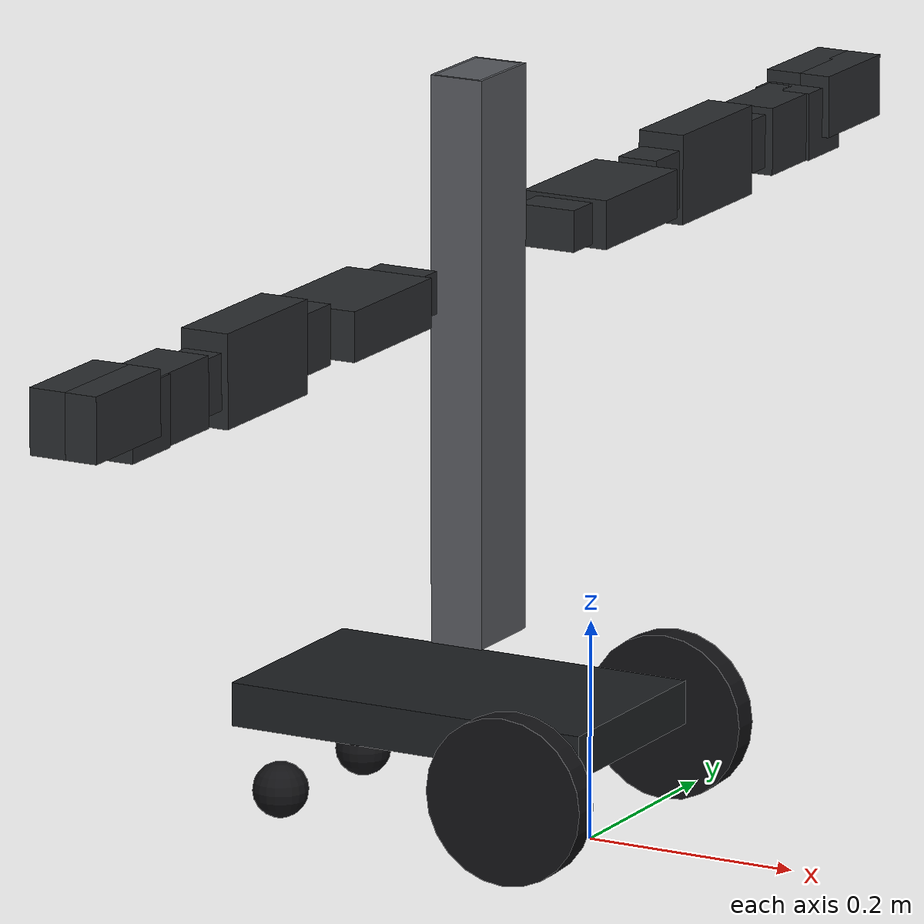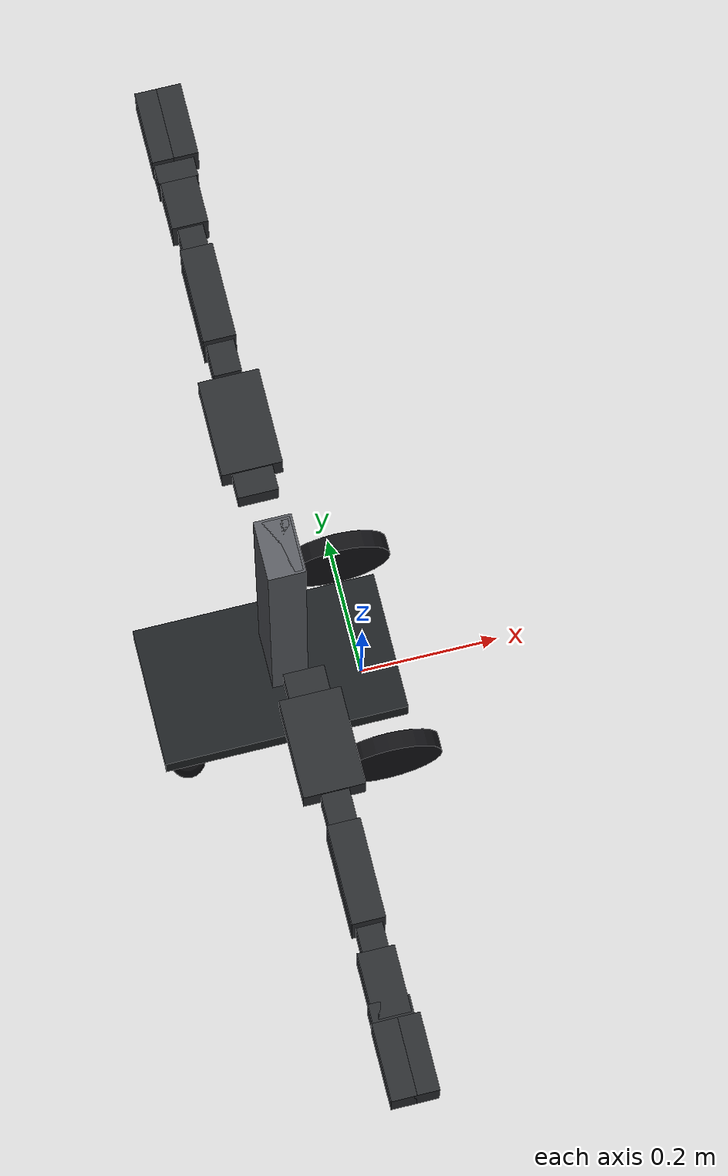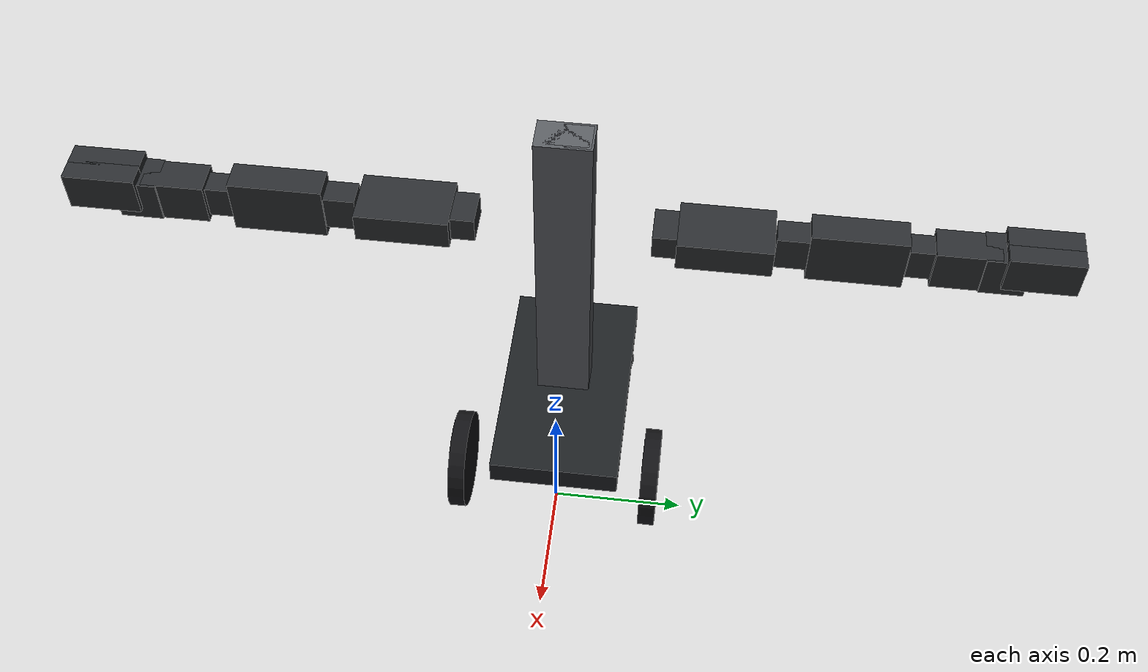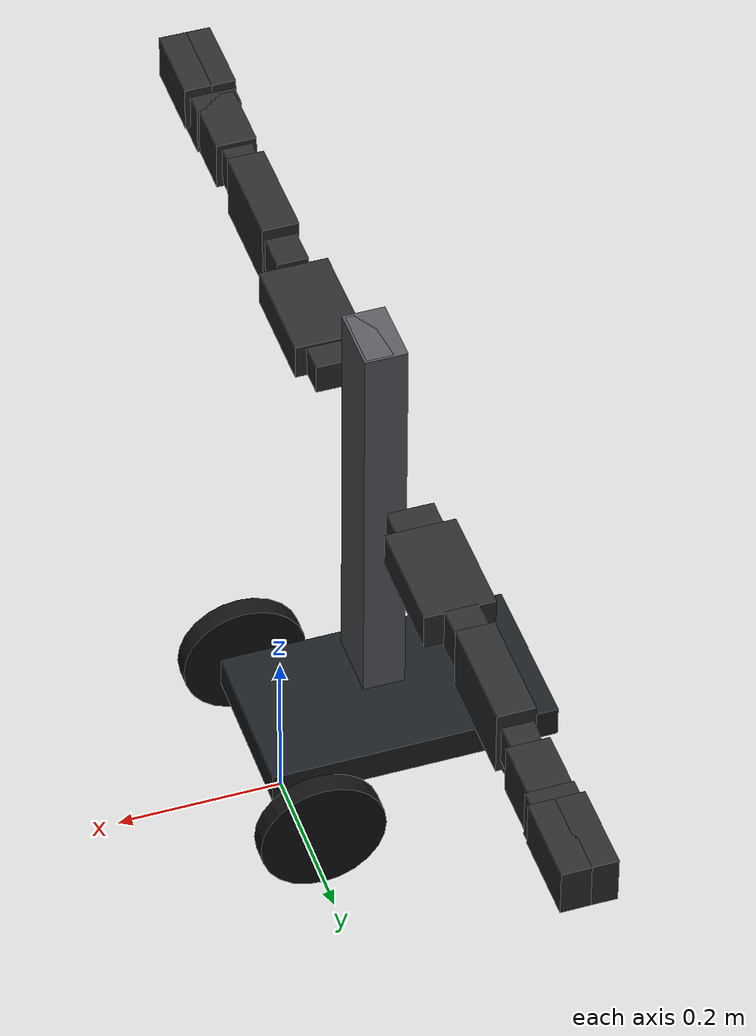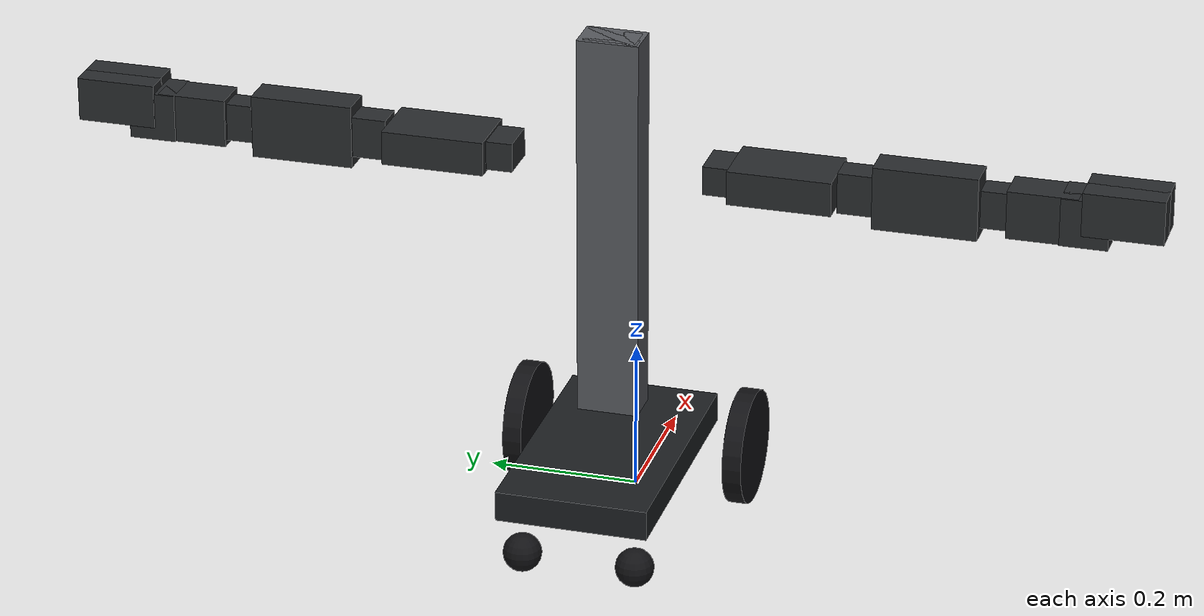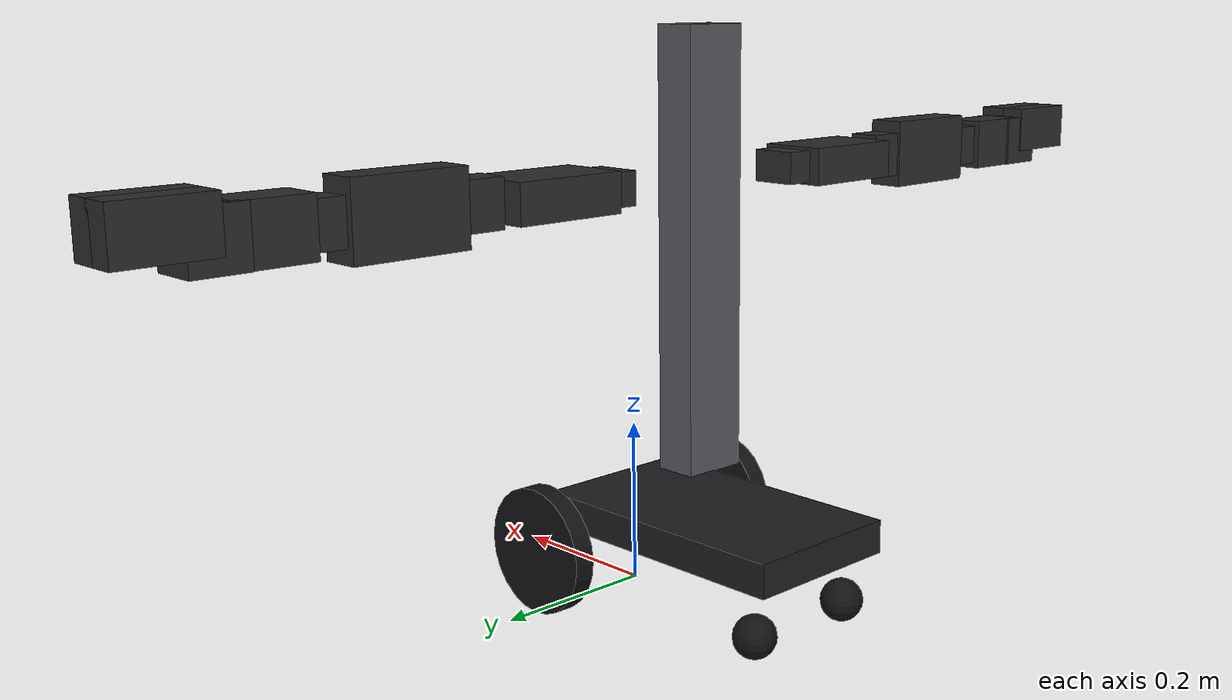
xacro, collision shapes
<?xml version="1.0"?>
<robot name="nori_leader" xmlns:xacro="http://www.ros.org/wiki/xacro">
  <xacro:arg name="left_bus_port"
    default="/dev/serial/by-id/usb-1a86_USB_Single_Serial_5B3D044472-if00"/>
  <xacro:arg name="right_bus_port"
    default="/dev/serial/by-id/usb-1a86_USB_Single_Serial_5B14029254-if00"/>
  <xacro:arg name="left_calibration_file"
    default="~/.config/nori/leader_left_arm_calibration.yaml"/>
  <xacro:arg name="right_calibration_file"
    default="~/.config/nori/leader_right_arm_calibration.yaml"/>
  <xacro:arg name="left_expected_model_number"
    default="UNVERIFIED_LEFT_MODEL"/>
  <xacro:arg name="right_expected_model_number"
    default="UNVERIFIED_RIGHT_MODEL"/>

  <xacro:include filename="properties.xacro"/>
  <xacro:include filename="base.xacro"/>
  <xacro:include filename="arm.xacro"/>
  <xacro:include filename="../ros2_control/nori_feetech.ros2_control.xacro"/>

  <!-- Reuse the established physical joint names and kinematic tree. -->
  <xacro:nori_base/>
  <xacro:nori_arm side="left" side_sign="-1.0"/>
  <xacro:nori_arm side="right" side_sign="1.0"/>

  <xacro:nori_feetech_leader_dual_arm_ros2_control
    left_bus_port="$(arg left_bus_port)"
    right_bus_port="$(arg right_bus_port)"
    left_calibration_file="$(arg left_calibration_file)"
    right_calibration_file="$(arg right_calibration_file)"
    left_expected_model_number="$(arg left_expected_model_number)"
    right_expected_model_number="$(arg right_expected_model_number)"
    baud_rate="1000000"/>
</robot>

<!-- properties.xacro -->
<robot xmlns:xacro="http://www.ros.org/wiki/xacro">

  <!-- Masses come from config/inertial_parameters.yaml. Edit that file, not this
       one, when hardware is weighed. -->
  <xacro:include filename="inertial.xacro"/>

  <xacro:property name="nori_pi" value="3.141592653589793"/>

  <!-- Supplied chassis dimensions in SI units. -->
  <xacro:property name="base_length" value="0.350"/>
  <xacro:property name="base_width" value="0.200"/>
  <xacro:property name="base_height" value="0.040"/>
  <!-- Drive-wheel axle center is 41.72459 mm behind the chassis front edge. -->
  <xacro:property name="axle_to_base_front" value="0.04172459"/>
  <!-- The drive-wheel axle is 9.62764 mm below the chassis bottom. -->
  <xacro:property name="wheel_center_below_base" value="0.00962764"/>
  <xacro:property name="base_geometry_x" value="${axle_to_base_front - base_length / 2.0}"/>
  <xacro:property name="base_geometry_z" value="${wheel_center_below_base + base_height / 2.0}"/>

  <xacro:property name="lift_lower_height" value="0.515"/>
  <xacro:property name="lift_upper_height" value="1.235"/>
  <xacro:property name="lift_travel" value="${lift_upper_height - lift_lower_height}"/>
  <xacro:property name="lift_top_margin" value="0.02"/>
  <xacro:property name="lift_command_travel" value="${lift_travel - lift_top_margin}"/>
  <xacro:property name="lift_stage_height" value="${lift_lower_height}"/>

  <xacro:property name="lift_middle_travel_ratio" value="0.5"/>
  <xacro:property name="lift_bottom_depth" value="0.03875250"/>
  <xacro:property name="lift_bottom_width" value="0.06890250"/>
  <xacro:property name="lift_middle_depth" value="0.04475250"/>
  <xacro:property name="lift_middle_width" value="0.07490250"/>
  <xacro:property name="lift_top_depth" value="0.05075250"/>
  <xacro:property name="lift_top_width" value="0.08090250"/>
  <xacro:property name="lift_front_edge_setback" value="0.13587150"/>
  <xacro:property name="lift_base_clearance" value="0.0456"/>
  <xacro:property name="lift_x"
    value="${axle_to_base_front - lift_front_edge_setback - lift_bottom_depth / 2.0}"/>
  <xacro:property name="lift_y" value="0.0"/>
  <xacro:property name="lift_retracted_center_z"
    value="${wheel_center_below_base + base_height + lift_base_clearance + lift_stage_height / 2.0}"/>
  <xacro:property name="lift_effort_limit" value="1.0"/>
  <xacro:property name="lift_velocity_limit" value="0.15"/>

  <xacro:property name="arm_mount_separation" value="0.250"/>
  <xacro:property name="arm_mount_below_lift_top_face" value="0.014"/>
  <xacro:property name="shoulder_pitch_down_adjustment" value="0.15651734"/>
  <xacro:property name="arm_mount_behind_lift_top_front" value="0.02537848"/>
  <xacro:property name="arm_mount_x_from_lift_top"
    value="${lift_top_depth / 2.0 - arm_mount_behind_lift_top_front}"/>
  <xacro:property name="arm_mount_y_from_lift_top"
    value="${arm_mount_separation / 2.0}"/>
  <xacro:property name="arm_mount_z_from_lift_top"
    value="${lift_stage_height / 2.0
             - arm_mount_below_lift_top_face
             - shoulder_pitch_down_adjustment}"/>

  <!-- Measured front-camera frame relative to the moving lift-top envelope. -->
  <xacro:property name="front_camera_below_lift_top_edge" value="0.17765747"/>
  <xacro:property name="front_camera_forward_of_lift_top_front" value="0.05166080"/>
  <xacro:property name="front_camera_x_from_lift_top"
    value="${lift_top_depth / 2.0 + front_camera_forward_of_lift_top_front}"/>
  <xacro:property name="front_camera_z_from_lift_top"
    value="${lift_stage_height / 2.0 - front_camera_below_lift_top_edge}"/>

  <!-- Measured overhead-camera frame relative to the moving lift-top envelope. -->
  <xacro:property name="overhead_camera_above_lift_top_face" value="0.05299205"/>
  <xacro:property name="overhead_camera_forward_of_lift_top_front" value="0.06426471"/>
  <xacro:property name="overhead_camera_x_from_lift_top"
    value="${lift_top_depth / 2.0 + overhead_camera_forward_of_lift_top_front}"/>
  <xacro:property name="overhead_camera_z_from_lift_top"
    value="${lift_stage_height / 2.0 + overhead_camera_above_lift_top_face}"/>

  <!-- Wheel diameter, width, and center-to-center separation supplied for NORI. -->
  <xacro:property name="wheel_radius" value="0.0762"/>
  <xacro:property name="wheel_width" value="0.0254"/>
  <xacro:property name="wheel_separation" value="0.30"/>

  <xacro:property name="base_shell_mesh_scale" value="0.001"/>
  <xacro:property name="base_shell_yaw" value="${nori_pi}"/>
  <xacro:property name="base_shell_offset_x" value="0.691944"/>
  <xacro:property name="base_shell_offset_y" value="0.216671"/>
  <xacro:property name="base_shell_offset_z" value="0.667639"/>

  <!-- Two rear casters, 315 mm behind the front edge and 150 mm apart laterally.
       TODO: Measure the caster swivel geometry. -->
  <xacro:property name="caster_radius" value="0.0254"/>
  <xacro:property name="caster_separation" value="0.150"/>
  <xacro:property name="caster_front_offset" value="0.315"/>
  <xacro:property name="caster_x" value="${axle_to_base_front - caster_front_offset}"/>

  <xacro:property name="lidar_mesh_scale" value="0.001"/>
  <xacro:property name="lidar_mesh_max_x" value="0.0278"/>
  <xacro:property name="lidar_mesh_min_z" value="0.0"/>
  <xacro:property name="lidar_mesh_max_z" value="0.0413"/>
  <xacro:property name="lidar_front_edge_setback" value="0.0097"/>
  <xacro:property name="lidar_x"
    value="${axle_to_base_front - lidar_front_edge_setback - lidar_mesh_max_x}"/>
  <xacro:property name="lidar_y" value="0.0"/>
  <!-- Raise the scan frame inside the fixed C1 model to match its scan plane. -->
  <xacro:property name="lidar_scan_offset_z" value="0.030"/>
  <xacro:property name="lidar_base_clearance" value="0.050"/>
  <xacro:property name="lidar_model_z" value="${wheel_center_below_base + base_height + lidar_base_clearance - lidar_mesh_min_z}"/>
  <xacro:property name="lidar_z" value="${lidar_model_z + lidar_scan_offset_z}"/>

  <!-- Simple LiDAR collision/inertia envelope derived from the C1 body. -->
  <xacro:property name="lidar_radius" value="${lidar_mesh_max_x}"/>
  <xacro:property name="lidar_height" value="${lidar_mesh_max_z - lidar_mesh_min_z}"/>
  <xacro:property name="lidar_collision_z" value="${(lidar_mesh_min_z + lidar_mesh_max_z) / 2.0}"/>

  <!--
    Supplied IMU envelope and edge placement. Depth is along robot X, width is
    along robot Y. The right-edge inset is measured inward from the chassis'
    right edge.
  -->
  <xacro:property name="imu_depth" value="0.00525"/>
  <xacro:property name="imu_width" value="0.00385"/>
  <xacro:property name="imu_height" value="0.0012"/>
  <xacro:property name="imu_front_edge_setback" value="0.020666"/>
  <xacro:property name="imu_right_edge_inset" value="0.01716726"/>
  <xacro:property name="imu_base_clearance" value="0.0076"/>
  <xacro:property name="imu_x"
    value="${axle_to_base_front - imu_front_edge_setback - imu_depth / 2.0}"/>
  <xacro:property name="imu_y"
    value="${-base_width / 2.0 + imu_right_edge_inset + imu_width / 2.0}"/>
  <xacro:property name="imu_z"
    value="${wheel_center_below_base + base_height + imu_base_clearance + imu_height / 2.0}"/>

  <xacro:property name="arm_thickness" value="0.050"/>
  <!-- Arm STLs are millimetres; see arm.xacro for frame conventions. -->
  <xacro:property name="arm_mesh_scale" value="0.001"/>
  <xacro:property name="shoulder_pitch_depth" value="0.05560"/>
  <xacro:property name="shoulder_pitch_width" value="0.04700"/>
  <xacro:property name="shoulder_pitch_height" value="0.03826"/>
  <xacro:property name="shoulder_pitch_body_y_from_inside_face"
    value="${shoulder_pitch_width / 2.0}"/>
  <xacro:property name="shoulder_pitch_mesh_y_offset" value="0.00"/>
  <xacro:property name="shoulder_roll_depth" value="0.08360"/>
  <xacro:property name="shoulder_roll_width" value="0.04500"/>
  <xacro:property name="shoulder_roll_height" value="0.1350"/>
  <xacro:property name="shoulder_roll_axis_from_top" value="0.02200"/>
  <xacro:property name="shoulder_roll_axis_inward_from_pitch_outside" value="0.01590"/>
  <!-- Includes a 25.6 mm outboard term beyond the nominal
       (pitch_width - axis_inward) derivation. Reconciled against hardware and
       verified correct; do not "simplify" it back out. -->
  <xacro:property name="shoulder_roll_y_from_shoulder_pitch"
    value="${shoulder_pitch_width - shoulder_roll_axis_inward_from_pitch_outside + 0.0256}"/>
  <xacro:property name="shoulder_roll_body_z_from_axis"
    value="${shoulder_roll_axis_from_top - shoulder_roll_height / 2.0}"/>
  <xacro:property name="bicep_yaw_depth" value="0.03826"/>
  <xacro:property name="bicep_yaw_width" value="0.05410"/>
  <xacro:property name="bicep_yaw_height" value="0.08326"/>
  <xacro:property name="bicep_yaw_z_offset_from_roll_bottom" value="0.00200"/>
  <xacro:property name="shoulder_roll_bottom_from_axis"
    value="${shoulder_roll_height - shoulder_roll_axis_from_top}"/>
  <xacro:property name="bicep_yaw_drop"
    value="${shoulder_roll_bottom_from_axis + bicep_yaw_z_offset_from_roll_bottom}"/>
  <xacro:property name="bicep_yaw_body_z_from_top"
    value="${-bicep_yaw_height / 2.0}"/>
  <!--
    Elbow pitch uses the shoulder-roll housing rotated 90 degrees about Z,
    changing its axis from X to Y. Its axis is 15.9 mm above the bottom face
    of the bicep-yaw housing.
  -->
  <xacro:property name="elbow_pitch_axis_up_from_bicep_bottom" value="0.01590"/>
  <xacro:property name="elbow_pitch_drop"
    value="${bicep_yaw_height - elbow_pitch_axis_up_from_bicep_bottom}"/>
  <!--
    The forearm-yaw frame is centered on its top face, and that face is 2 mm
    below the elbow-pitch housing's bottom face.
  -->
  <xacro:property name="forearm_yaw_depth" value="0.03520"/>
  <xacro:property name="forearm_yaw_width" value="0.05000"/>
  <xacro:property name="forearm_yaw_height" value="0.05640"/>
  <xacro:property name="forearm_yaw_gap_from_elbow_bottom" value="0.00200"/>
  <xacro:property name="forearm_yaw_drop"
    value="${shoulder_roll_bottom_from_axis + forearm_yaw_gap_from_elbow_bottom}"/>
  <xacro:property name="forearm_yaw_body_z_from_top"
    value="${-forearm_yaw_height / 2.0}"/>
  <!--
    The wrist-pitch frame is centered in X/Y and lies 12 mm below the housing
    top. Its axis is 10.2 mm above the forearm-yaw bottom face.
  -->
  <xacro:property name="wrist_pitch_depth" value="0.05000"/>
  <xacro:property name="wrist_pitch_width" value="0.06340"/>
  <xacro:property name="wrist_pitch_height" value="0.09"/>
  <xacro:property name="wrist_pitch_axis_from_top" value="0.01200"/>
  <xacro:property name="wrist_pitch_axis_up_from_forearm_bottom" value="0.01020"/>
  <xacro:property name="wrist_pitch_drop"
    value="${forearm_yaw_height - wrist_pitch_axis_up_from_forearm_bottom}"/>
  <xacro:property name="wrist_pitch_body_z_from_axis"
    value="${wrist_pitch_axis_from_top - wrist_pitch_height / 2.0}"/>
  <!--
    The wrist-roll frame is centered in X/Y and lies 12 mm below its housing
    top. Its axis is 10.2 mm above the wrist-pitch bottom face.
  -->
  <xacro:property name="wrist_roll_depth" value="0.05525"/>
  <xacro:property name="wrist_roll_width" value="0.06340"/>
  <xacro:property name="wrist_roll_height" value="0.06178433"/>
  <xacro:property name="wrist_roll_axis_from_top" value="0.01200"/>
  <xacro:property name="wrist_roll_axis_up_from_wrist_pitch_bottom" value="0.01020"/>
  <xacro:property name="wrist_pitch_bottom_from_axis"
    value="${wrist_pitch_height - wrist_pitch_axis_from_top}"/>
  <xacro:property name="wrist_roll_drop"
    value="${wrist_pitch_bottom_from_axis - wrist_roll_axis_up_from_wrist_pitch_bottom}"/>
  <xacro:property name="wrist_roll_body_z_from_axis"
    value="${wrist_roll_axis_from_top - wrist_roll_height / 2.0}"/>
  <xacro:property name="wrist_roll_y_from_wrist_pitch" value="0.0"/>
  <xacro:property name="wrist_roll_x_from_wrist_pitch" value="0.0"/>
  <!--
    The gripper frame is centered in X/Y and lies 16 mm below its housing top.
    Its axis is 17.3 mm inboard of the wrist-roll outside Y face and 17.5 mm
    above the wrist-roll bottom face.
  -->
  <xacro:property name="gripper_depth" value="0.05000"/>
  <xacro:property name="gripper_width" value="0.03100"/>
  <xacro:property name="gripper_height" value="0.10000"/>
  <xacro:property name="gripper_axis_from_top" value="0.01600"/>
  <xacro:property name="gripper_axis_inward_from_wrist_roll_outside" value="0.01730"/>
  <xacro:property name="gripper_axis_up_from_wrist_roll_bottom" value="0.01750"/>
  <xacro:property name="gripper_y_from_wrist_roll"
    value="${wrist_roll_width / 2.0 - gripper_axis_inward_from_wrist_roll_outside}"/>
  <xacro:property name="wrist_roll_bottom_from_axis"
    value="${wrist_roll_height - wrist_roll_axis_from_top}"/>
  <xacro:property name="gripper_drop"
    value="${wrist_roll_bottom_from_axis - gripper_axis_up_from_wrist_roll_bottom}"/>
  <xacro:property name="gripper_body_z_from_axis"
    value="${gripper_axis_from_top - gripper_height / 2.0}"/>
  <xacro:property name="gripper_gear_center_distance" value="0.030"/>
  <xacro:property name="gripper_tcp_below_pivots" value="0.080"/>
  <xacro:property name="wrist_roll_mesh_x" value="-0.0174"/>
  <xacro:property name="wrist_roll_mesh_y" value="-0.0089"/>
  <xacro:property name="gripper_finger_depth" value="0.034"/>
  <xacro:property name="gripper_finger_width" value="0.058"/>
  <xacro:property name="gripper_finger_height" value="0.104"/>
  <xacro:property name="gripper_finger_body_y" value="0.023"/>
  <xacro:property name="gripper_finger_body_z" value="-0.035"/>
  <xacro:property name="camera_marker_radius" value="0.007"/>
  <xacro:property name="camera_marker_length" value="0.020"/>

  <xacro:property name="gripper_camera_mount_mesh_scale" value="0.001"/>
  <xacro:property name="gripper_camera_mount_y_offset" value="0.040"/>
  <xacro:property name="left_gripper_camera_mount_x_offset" value="0.015"/>
  <xacro:property name="right_gripper_camera_mount_x_offset" value="0.014"/>
  <!-- Measured left camera frame position relative to its mount link. -->
  <xacro:property name="left_wrist_camera_y_from_mount" value="-0.05341331"/>
  <xacro:property name="left_wrist_camera_z_from_mount" value="-0.02543202"/>
  <!-- The right frame mirrors the left in base_link. Its local X correction
       compensates for the mounts' 15 mm versus 14 mm X offsets. -->
  <xacro:property name="right_wrist_camera_x_from_mount"
    value="${left_gripper_camera_mount_x_offset - right_gripper_camera_mount_x_offset}"/>
  <xacro:property name="right_wrist_camera_y_from_mount"
    value="${-left_wrist_camera_y_from_mount}"/>
  <xacro:property name="right_wrist_camera_z_from_mount"
    value="${left_wrist_camera_z_from_mount}"/>
  <xacro:property name="deg_to_rad" value="${nori_pi / 180.0}"/>
  <xacro:property name="shoulder_pitch_lower_limit" value="${-180.0 * deg_to_rad}"/>
  <xacro:property name="shoulder_pitch_upper_limit" value="${180.0 * deg_to_rad}"/>
  <xacro:property name="shoulder_roll_lower_limit" value="${-90.0 * deg_to_rad}"/>
  <xacro:property name="shoulder_roll_upper_limit" value="${90.0 * deg_to_rad}"/>
  <xacro:property name="bicep_yaw_lower_limit" value="${-180.0 * deg_to_rad}"/>
  <xacro:property name="bicep_yaw_upper_limit" value="${180.0 * deg_to_rad}"/>
  <xacro:property name="elbow_pitch_lower_limit" value="${-90.0 * deg_to_rad}"/>
  <xacro:property name="elbow_pitch_upper_limit" value="${90.0 * deg_to_rad}"/>
  <xacro:property name="forearm_yaw_lower_limit" value="${-180.0 * deg_to_rad}"/>
  <xacro:property name="forearm_yaw_upper_limit" value="${180.0 * deg_to_rad}"/>
  <xacro:property name="wrist_pitch_lower_limit" value="${-90.0 * deg_to_rad}"/>
  <xacro:property name="wrist_pitch_upper_limit" value="${90.0 * deg_to_rad}"/>
  <xacro:property name="wrist_roll_lower_limit" value="${-90.0 * deg_to_rad}"/>
  <xacro:property name="wrist_roll_upper_limit" value="${90.0 * deg_to_rad}"/>
  <xacro:property name="gripper_lower_limit" value="${0.0 * deg_to_rad}"/>
  <xacro:property name="gripper_upper_limit" value="${90.0 * deg_to_rad}"/>
  <xacro:property name="arm_effort_limit" value="4.0"/>
  <xacro:property name="arm_velocity_limit" value="3.0"/>

  <!-- Arm links and grippers: dark grey moulded plastic. -->
  <material name="nori_arm_plastic">
    <color rgba="0.16 0.17 0.18 1.0"/>
  </material>

  <!-- Chassis: darker than the arms, slightly warmer. -->
  <material name="nori_chassis">
    <color rgba="0.11 0.12 0.13 1.0"/>
  </material>

  <material name="nori_lift_metal">
    <color rgba="0.34 0.35 0.37 1.0"/>
  </material>

  <!-- Tyres and caster treads: near-black rubber. -->
  <material name="nori_tyre">
    <color rgba="0.07 0.07 0.08 1.0"/>
  </material>

  <!-- Sensor housings. -->
  <material name="nori_sensor">
    <color rgba="0.18 0.19 0.21 1.0"/>
  </material>

  <!-- Display glass: darker and cooler than the body plastic. -->
  <material name="nori_screen">
    <color rgba="0.05 0.06 0.08 1.0"/>
  </material>

  <!-- Eyes: brighter than the body white so they read as lit against the screen. -->
  <material name="nori_eye">
    <color rgba="0.99 0.99 0.99 1.0"/>
  </material>

  <!-- Near-white: head and the torso's upper cap. -->
  <material name="nori_white">
    <color rgba="0.93 0.94 0.95 1.0"/>
  </material>

  <!-- Light shell panels. -->
  <material name="nori_shell">
    <color rgba="0.80 0.81 0.83 1.0"/>
  </material>

  <xacro:macro name="nori_camera" params="name parent xyz pitch:=0 yaw:=0 roll:=0">
    <link name="${name}_mount_frame"/>
    <joint name="${name}_mount_joint" type="fixed">
      <parent link="${parent}"/>
      <child link="${name}_mount_frame"/>
      <origin xyz="${xyz}" rpy="${roll} ${pitch} ${yaw}"/>
    </joint>

    <link name="${name}_optical_frame">
      <xacro:nori_camera_marker/>
    </link>
    <joint name="${name}_optical_joint" type="fixed">
      <parent link="${name}_mount_frame"/>
      <child link="${name}_optical_frame"/>
      <origin xyz="0 0 0" rpy="${-nori_pi / 2.0} 0 ${-nori_pi / 2.0}"/>
    </joint>
  </xacro:macro>

  <xacro:property name="cap_pitch_deg" value="35.0"/>
  <xacro:property name="head_pitch_deg" value="5.0"/>

  <!-- Measured aim angles, degrees. -->
  <xacro:property name="front_camera_pitch_deg" value="0.0"/>
  <xacro:property name="overhead_camera_pitch_deg"
    value="${90.0 - cap_pitch_deg - head_pitch_deg}"/>
  <xacro:property name="wrist_camera_yaw_deg" value="90.0"/>
  <xacro:property name="wrist_camera_pitch_deg" value="45.0"/>

  <xacro:macro name="nori_camera_marker" params="">
    <visual>
      <origin xyz="0 0 0" rpy="0 0 0"/>
      <geometry>
        <cylinder radius="${camera_marker_radius}" length="${camera_marker_length}"/>
      </geometry>
      <material name="nori_sensor"/>
    </visual>
  </xacro:macro>

  <xacro:macro name="box_inertial" params="mass length width height origin_xyz">
    <inertial>
      <origin xyz="${origin_xyz}" rpy="0 0 0"/>
      <mass value="${mass}"/>
      <inertia
        ixx="${mass * (width * width + height * height) / 12.0}" ixy="0.0" ixz="0.0"
        iyy="${mass * (length * length + height * height) / 12.0}" iyz="0.0"
        izz="${mass * (length * length + width * width) / 12.0}"/>
    </inertial>
  </xacro:macro>

  <!-- Cylinder inertia is expressed about the cylinder's local Z axis. -->
  <xacro:macro name="cylinder_inertial" params="mass radius length origin_xyz rpy">
    <inertial>
      <origin xyz="${origin_xyz}" rpy="${rpy}"/>
      <mass value="${mass}"/>
      <inertia
        ixx="${mass * (3.0 * radius * radius + length * length) / 12.0}" ixy="0.0" ixz="0.0"
        iyy="${mass * (3.0 * radius * radius + length * length) / 12.0}" iyz="0.0"
        izz="${mass * radius * radius / 2.0}"/>
    </inertial>
  </xacro:macro>

  <xacro:macro name="sphere_inertial" params="mass radius">
    <inertial>
      <mass value="${mass}"/>
      <inertia
        ixx="${2.0 * mass * radius * radius / 5.0}" ixy="0.0" ixz="0.0"
        iyy="${2.0 * mass * radius * radius / 5.0}" iyz="0.0"
        izz="${2.0 * mass * radius * radius / 5.0}"/>
    </inertial>
  </xacro:macro>
</robot>

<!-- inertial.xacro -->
<robot xmlns:xacro="http://www.ros.org/wiki/xacro">

  <xacro:property
    name="nori_inertial_cfg"
    value="${xacro.load_yaml('$(find nori_description)/config/inertial_parameters.yaml')}"/>
  <xacro:property name="nori_links" value="${nori_inertial_cfg['links']}"/>

  <!-- Base -->
  <xacro:property name="base_mass" value="${nori_links['base_link']['mass']}"/>
  <xacro:property name="wheel_mass" value="${nori_links['wheel']['mass']}"/>
  <xacro:property name="caster_mass" value="${nori_links['caster']['mass']}"/>

  <!-- Lift: three stages, individually specified. `lift_stage_mass` is kept as
       an alias for the bottom stage so any older call site still resolves. -->
  <xacro:property name="lift_bottom_mass" value="${nori_links['lift_bottom']['mass']}"/>
  <xacro:property name="lift_middle_mass" value="${nori_links['lift_middle']['mass']}"/>
  <xacro:property name="lift_top_mass" value="${nori_links['lift_top']['mass']}"/>
  <xacro:property name="lift_stage_mass" value="${lift_bottom_mass}"/>

  <!-- Arm, per side. Left and right are mirror-identical. -->
  <xacro:property name="shoulder_pitch_mass" value="${nori_links['shoulder_pitch']['mass']}"/>
  <xacro:property name="shoulder_roll_mass" value="${nori_links['shoulder_roll']['mass']}"/>
  <xacro:property name="bicep_yaw_mass" value="${nori_links['bicep_yaw']['mass']}"/>
  <xacro:property name="elbow_pitch_mass" value="${nori_links['elbow_pitch']['mass']}"/>
  <xacro:property name="forearm_yaw_mass" value="${nori_links['forearm_yaw']['mass']}"/>
  <xacro:property name="wrist_pitch_mass" value="${nori_links['wrist_pitch']['mass']}"/>
  <xacro:property name="wrist_roll_mass" value="${nori_links['wrist_roll']['mass']}"/>

  <!-- One finger. arm.xacro builds two fingers per gripper. -->
  <xacro:property name="gripper_finger_mass" value="${nori_links['gripper_finger']['mass']}"/>

  <!-- Upper body (torso shell, neck, head) -->
  <xacro:property name="torso_mass" value="${nori_links['torso']['mass']}"/>
  <xacro:property name="neck_mass" value="${nori_links['neck']['mass']}"/>
  <xacro:property name="head_mass" value="${nori_links['head']['mass']}"/>

  <!-- Sensors -->
  <xacro:property name="lidar_mass" value="${nori_links['lidar']['mass']}"/>
  <xacro:property name="imu_mass" value="${nori_links['imu']['mass']}"/>

</robot>

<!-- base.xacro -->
<robot xmlns:xacro="http://www.ros.org/wiki/xacro">
  <!-- A wheel cylinder is rotated so its local Z axis is parallel to robot Y. -->
  <xacro:macro name="nori_wheel" params="side y">
    <link name="${side}_wheel_link">
      <visual>
        <origin xyz="0 0 0" rpy="${nori_pi / 2.0} 0 0"/>
        <geometry>
          <cylinder radius="${wheel_radius}" length="${wheel_width}"/>
        </geometry>
        <material name="nori_tyre"/>
      </visual>
      <collision>
        <origin xyz="0 0 0" rpy="${nori_pi / 2.0} 0 0"/>
        <geometry>
          <cylinder radius="${wheel_radius}" length="${wheel_width}"/>
        </geometry>
      </collision>
      <xacro:cylinder_inertial
        mass="${wheel_mass}" radius="${wheel_radius}" length="${wheel_width}"
        origin_xyz="0 0 0" rpy="${nori_pi / 2.0} 0 0"/>
    </link>

    <joint name="${side}_wheel_joint" type="continuous">
      <parent link="base_link"/>
      <child link="${side}_wheel_link"/>
      <origin xyz="0 ${y} 0" rpy="0 0 0"/>
      <axis xyz="0 1 0"/>
      <dynamics damping="0.05" friction="0.02"/>
    </joint>
  </xacro:macro>

  <xacro:macro name="nori_caster_wheel" params="side y">
    <link name="${side}_caster_wheel_link">
      <visual>
        <geometry>
          <sphere radius="${caster_radius}"/>
        </geometry>
        <material name="nori_tyre"/>
      </visual>
      <collision>
        <geometry>
          <sphere radius="${caster_radius}"/>
        </geometry>
      </collision>
      <xacro:sphere_inertial mass="${caster_mass}" radius="${caster_radius}"/>
    </link>

    <!-- A fixed sphere approximates free caster swivel and rolling motion. -->
    <joint name="${side}_caster_wheel_joint" type="fixed">
      <parent link="caster_link"/>
      <child link="${side}_caster_wheel_link"/>
      <origin xyz="0 ${y} 0" rpy="0 0 0"/>
    </joint>
  </xacro:macro>

  <xacro:macro name="nori_base" params="">
    <!-- base_footprint lies on the nominal ground plane; +X forward, +Y left, +Z up. -->
    <link name="base_footprint"/>

    <link name="base_link">
      <visual>
        <origin xyz="${base_geometry_x} 0 ${base_geometry_z}" rpy="0 0 0"/>
        <geometry>
          <box size="${base_length} ${base_width} ${base_height}"/>
        </geometry>
        <material name="nori_chassis"/>
      </visual>
      <visual>
        <origin
          xyz="${base_shell_offset_x} ${base_shell_offset_y} ${base_shell_offset_z}"
          rpy="0 0 ${base_shell_yaw}"/>
        <geometry>
          <mesh filename="package://nori_description/meshes/visual/base_shell.stl"
                scale="${base_shell_mesh_scale} ${base_shell_mesh_scale} ${base_shell_mesh_scale}"/>
        </geometry>
        <material name="nori_shell"/>
      </visual>
      <collision>
        <origin xyz="${base_geometry_x} 0 ${base_geometry_z}" rpy="0 0 0"/>
        <geometry>
          <box size="${base_length} ${base_width} ${base_height}"/>
        </geometry>
      </collision>
      <xacro:box_inertial
        mass="${base_mass}" length="${base_length}" width="${base_width}" height="${base_height}"
        origin_xyz="${base_geometry_x} 0 ${base_geometry_z}"/>
    </link>

    <!-- base_link is at the wheel axle center; base_footprint is one wheel radius below. -->
    <joint name="base_footprint_joint" type="fixed">
      <parent link="base_footprint"/>
      <child link="base_link"/>
      <origin xyz="0 0 ${wheel_radius}" rpy="0 0 0"/>
    </joint>

    <xacro:nori_wheel side="left" y="${wheel_separation / 2.0}"/>
    <xacro:nori_wheel side="right" y="${-wheel_separation / 2.0}"/>

    <!-- Center mounting frame for the pair of rear caster wheels. -->
    <link name="caster_link"/>

    <joint name="caster_joint" type="fixed">
      <parent link="base_link"/>
      <child link="caster_link"/>
      <origin xyz="${caster_x} 0 ${-wheel_radius + caster_radius}" rpy="0 0 0"/>
    </joint>

    <xacro:nori_caster_wheel side="left" y="${caster_separation / 2.0}"/>
    <xacro:nori_caster_wheel side="right" y="${-caster_separation / 2.0}"/>

    <!-- The fixed inner section replaces the former one-piece mast. -->
    <link name="lift_bottom_link">
      <visual>
        <geometry>
          <box size="${lift_bottom_depth} ${lift_bottom_width} ${lift_stage_height}"/>
        </geometry>
        <material name="nori_lift_metal"/>
      </visual>
      <collision>
        <geometry>
          <box size="${lift_bottom_depth} ${lift_bottom_width} ${lift_stage_height}"/>
        </geometry>
      </collision>
      <xacro:box_inertial
        mass="${lift_bottom_mass}" length="${lift_bottom_depth}"
        width="${lift_bottom_width}" height="${lift_stage_height}"
        origin_xyz="0 0 0"/>
    </link>

    <joint name="lift_bottom_joint" type="fixed">
      <parent link="base_link"/>
      <child link="lift_bottom_link"/>
      <origin
        xyz="${lift_x} ${lift_y} ${lift_retracted_center_z}" rpy="0 0 0"/>
    </joint>

    <!-- The outer/top section owns the full physical extension coordinate. -->
    <link name="lift_top_link">
      <visual>
        <geometry>
          <box size="${lift_top_depth} ${lift_top_width} ${lift_stage_height}"/>
        </geometry>
        <material name="nori_lift_metal"/>
      </visual>
      <collision>
        <geometry>
          <box size="${lift_top_depth} ${lift_top_width} ${lift_stage_height}"/>
        </geometry>
      </collision>
      <xacro:box_inertial
        mass="${lift_top_mass}" length="${lift_top_depth}"
        width="${lift_top_width}" height="${lift_stage_height}"
        origin_xyz="0 0 0"/>
    </link>

    <joint name="lift_extension_joint" type="prismatic">
      <parent link="base_link"/>
      <child link="lift_top_link"/>
      <origin
        xyz="${lift_x} ${lift_y} ${lift_retracted_center_z}" rpy="0 0 0"/>
      <axis xyz="0 0 1"/>
      <limit lower="0.0" upper="${lift_command_travel}"
        effort="${lift_effort_limit}" velocity="${lift_velocity_limit}"/>
      <dynamics damping="1.0" friction="0.0"/>
    </joint>

    <link name="lift_middle_link">
      <visual>
        <geometry>
          <box size="${lift_middle_depth} ${lift_middle_width} ${lift_stage_height}"/>
        </geometry>
        <material name="nori_lift_metal"/>
      </visual>
      <collision>
        <geometry>
          <box size="${lift_middle_depth} ${lift_middle_width} ${lift_stage_height}"/>
        </geometry>
      </collision>
      <xacro:box_inertial
        mass="${lift_middle_mass}" length="${lift_middle_depth}"
        width="${lift_middle_width}" height="${lift_stage_height}"
        origin_xyz="0 0 0"/>
    </link>

    <joint name="lift_middle_joint" type="prismatic">
      <parent link="base_link"/>
      <child link="lift_middle_link"/>
      <origin
        xyz="${lift_x} ${lift_y} ${lift_retracted_center_z}" rpy="0 0 0"/>
      <axis xyz="0 0 1"/>
      <limit lower="0.0" upper="${lift_command_travel * lift_middle_travel_ratio}"
        effort="${lift_effort_limit}"
        velocity="${lift_velocity_limit * lift_middle_travel_ratio}"/>
      <dynamics damping="1.0" friction="0.0"/>
      <mimic joint="lift_extension_joint"
        multiplier="${lift_middle_travel_ratio}" offset="0.0"/>
    </joint>

  </xacro:macro>
</robot>

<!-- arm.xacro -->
<robot xmlns:xacro="http://www.ros.org/wiki/xacro">

  <xacro:macro name="nori_arm_mesh_visual"
      params="mesh xyz side_sign rpy:='${-nori_pi / 2.0} 0 0'">
    <visual>
      <origin xyz="${xyz}" rpy="${rpy}"/>
      <geometry>
        <mesh
          filename="package://nori_description/meshes/visual/${mesh}${'_mirrored' if side_sign &lt; 0 else ''}.stl"
          scale="${arm_mesh_scale} ${arm_mesh_scale} ${arm_mesh_scale}"/>
      </geometry>
      <material name="nori_arm_plastic"/>
    </visual>
  </xacro:macro>

  <xacro:macro name="nori_shoulder_pitch_link" params="side side_sign">
    <link name="${side}_shoulder_pitch_link">
      <xacro:nori_arm_mesh_visual mesh="shoulder_pitch"
        xyz="0 ${side_sign * shoulder_pitch_mesh_y_offset} 0"
        side_sign="${side_sign}"/>
      <collision>
        <origin xyz="0 ${side_sign * shoulder_pitch_body_y_from_inside_face} 0" rpy="0 0 0"/>
        <geometry>
          <box size="${shoulder_pitch_depth} ${shoulder_pitch_width} ${shoulder_pitch_height}"/>
        </geometry>
      </collision>
      <xacro:box_inertial
        mass="${shoulder_pitch_mass}"
        length="${shoulder_pitch_depth}"
        width="${shoulder_pitch_width}"
        height="${shoulder_pitch_height}"
        origin_xyz="0 ${side_sign * shoulder_pitch_body_y_from_inside_face} 0"/>
    </link>
  </xacro:macro>

  <xacro:macro name="nori_shoulder_roll_link" params="side side_sign:=1.0">
    <link name="${side}_shoulder_roll_link">
      <xacro:nori_arm_mesh_visual mesh="shoulder_roll"
        xyz="0 0 ${-bicep_yaw_drop}" side_sign="${side_sign}"/>
      <collision>
        <origin xyz="0 0 ${shoulder_roll_body_z_from_axis}" rpy="0 0 0"/>
        <geometry>
          <box size="${shoulder_roll_depth} ${shoulder_roll_width} ${shoulder_roll_height}"/>
        </geometry>
      </collision>
      <xacro:box_inertial
        mass="${shoulder_roll_mass}"
        length="${shoulder_roll_depth}"
        width="${shoulder_roll_width}"
        height="${shoulder_roll_height}"
        origin_xyz="0 0 ${shoulder_roll_body_z_from_axis}"/>
    </link>
  </xacro:macro>

  <xacro:macro name="nori_bicep_yaw_link" params="side side_sign:=1.0">
    <link name="${side}_bicep_yaw_link">
      <xacro:nori_arm_mesh_visual mesh="bicep_yaw"
        xyz="0 0 ${-elbow_pitch_drop}" side_sign="${side_sign}"/>
      <collision>
        <origin xyz="0 0 ${bicep_yaw_body_z_from_top}" rpy="0 0 0"/>
        <geometry>
          <box size="${bicep_yaw_depth} ${bicep_yaw_width} ${bicep_yaw_height}"/>
        </geometry>
      </collision>
      <xacro:box_inertial
        mass="${bicep_yaw_mass}"
        length="${bicep_yaw_depth}"
        width="${bicep_yaw_width}"
        height="${bicep_yaw_height}"
        origin_xyz="0 0 ${bicep_yaw_body_z_from_top}"/>
    </link>
  </xacro:macro>

  <xacro:macro name="nori_elbow_pitch_link" params="side side_sign:=1.0">
    <link name="${side}_elbow_pitch_link">
      <xacro:nori_arm_mesh_visual mesh="elbow_pitch"
        xyz="0 0 ${-forearm_yaw_drop}" side_sign="${side_sign}"/>
      <collision>
        <origin
          xyz="0 0 ${shoulder_roll_body_z_from_axis}"
          rpy="0 0 ${nori_pi / 2.0}"/>
        <geometry>
          <box size="${shoulder_roll_depth} ${shoulder_roll_width} ${shoulder_roll_height}"/>
        </geometry>
      </collision>
      <!-- X/Y inertia dimensions swap after the 90-degree Z rotation. -->
      <xacro:box_inertial
        mass="${elbow_pitch_mass}"
        length="${shoulder_roll_width}"
        width="${shoulder_roll_depth}"
        height="${shoulder_roll_height}"
        origin_xyz="0 0 ${shoulder_roll_body_z_from_axis}"/>
    </link>
  </xacro:macro>

  <xacro:macro name="nori_forearm_yaw_link" params="side side_sign:=1.0">
    <link name="${side}_forearm_yaw_link">
      <xacro:nori_arm_mesh_visual mesh="forearm_yaw"
        xyz="0 0 ${-wrist_pitch_drop}" side_sign="${side_sign}"/>
      <collision>
        <origin xyz="0 0 ${forearm_yaw_body_z_from_top}" rpy="0 0 0"/>
        <geometry>
          <box size="${forearm_yaw_depth} ${forearm_yaw_width} ${forearm_yaw_height}"/>
        </geometry>
      </collision>
      <xacro:box_inertial
        mass="${forearm_yaw_mass}"
        length="${forearm_yaw_depth}"
        width="${forearm_yaw_width}"
        height="${forearm_yaw_height}"
        origin_xyz="0 0 ${forearm_yaw_body_z_from_top}"/>
    </link>
  </xacro:macro>

  <xacro:macro name="nori_wrist_pitch_link" params="side side_sign:=1.0">
    <link name="${side}_wrist_pitch_link">
      <xacro:nori_arm_mesh_visual mesh="wrist_pitch"
        xyz="0 0 ${-wrist_roll_drop}" side_sign="${side_sign}"/>
      <collision>
        <origin xyz="0 0 ${wrist_pitch_body_z_from_axis}" rpy="0 0 0"/>
        <geometry>
          <box size="${wrist_pitch_depth} ${wrist_pitch_width} ${wrist_pitch_height}"/>
        </geometry>
      </collision>
      <xacro:box_inertial
        mass="${wrist_pitch_mass}"
        length="${wrist_pitch_depth}"
        width="${wrist_pitch_width}"
        height="${wrist_pitch_height}"
        origin_xyz="0 0 ${wrist_pitch_body_z_from_axis}"/>
    </link>
  </xacro:macro>

  <xacro:macro name="nori_wrist_roll_link" params="side side_sign:=1.0">
    <link name="${side}_wrist_roll_link">
      <xacro:nori_arm_mesh_visual mesh="wrist_roll"
        xyz="${-wrist_roll_mesh_x} ${-side_sign * wrist_roll_mesh_y} ${-gripper_drop}"
        side_sign="${side_sign}"
        rpy="${-nori_pi / 2.0} 0 ${nori_pi}"/>
      <collision>
        <origin xyz="0 0 ${wrist_roll_body_z_from_axis}" rpy="0 0 0"/>
        <geometry>
          <box size="${wrist_roll_depth} ${wrist_roll_width} ${wrist_roll_height}"/>
        </geometry>
      </collision>
      <xacro:box_inertial
        mass="${wrist_roll_mass}"
        length="${wrist_roll_depth}"
        width="${wrist_roll_width}"
        height="${wrist_roll_height}"
        origin_xyz="0 0 ${wrist_roll_body_z_from_axis}"/>
    </link>
  </xacro:macro>

  <xacro:macro name="nori_gripper_finger_link" params="name mesh side_sign">
    <link name="${name}">
      <xacro:nori_arm_mesh_visual mesh="${mesh}" xyz="0 0 0"
        side_sign="${side_sign}"/>
      <collision>
        <origin
          xyz="0 ${side_sign * gripper_finger_body_y} ${gripper_finger_body_z}"
          rpy="0 0 0"/>
        <geometry>
          <box size="${gripper_finger_depth} ${gripper_finger_width} ${gripper_finger_height}"/>
        </geometry>
      </collision>
      <xacro:box_inertial
        mass="${gripper_finger_mass}"
        length="${gripper_finger_depth}"
        width="${gripper_finger_width}"
        height="${gripper_finger_height}"
        origin_xyz="0 ${side_sign * gripper_finger_body_y} ${gripper_finger_body_z}"/>
    </link>
  </xacro:macro>

  <xacro:macro name="nori_gripper_camera_mount" params="side side_sign">
    <link name="${side}_gripper_camera_mount_link">
      <visual>
        <origin xyz="0 0 0" rpy="0 0 0"/>
        <geometry>
          <mesh
            filename="package://nori_description/meshes/visual/camera_mounts/${side}_camera_mount_mirrored.stl"
            scale="${gripper_camera_mount_mesh_scale} ${gripper_camera_mount_mesh_scale} ${gripper_camera_mount_mesh_scale}"/>
        </geometry>
        <material name="nori_arm_plastic"/>
      </visual>
    </link>
    <joint name="${side}_gripper_camera_mount_joint" type="fixed">
      <parent link="${side}_wrist_roll_link"/>
      <child link="${side}_gripper_camera_mount_link"/>
      <origin
        xyz="${-wrist_roll_mesh_x
               - ((1.0 - side_sign) * left_gripper_camera_mount_x_offset / 2.0
                  + (1.0 + side_sign) * right_gripper_camera_mount_x_offset / 2.0)}
             ${-side_sign * wrist_roll_mesh_y - side_sign * gripper_camera_mount_y_offset}
             ${-gripper_drop}"
        rpy="0 0 ${nori_pi}"/>
    </joint>
  </xacro:macro>

  <xacro:macro name="nori_wrist_camera_frames">
    <xacro:nori_camera
      name="left_wrist_camera"
      parent="left_gripper_camera_mount_link"
      xyz="0 ${left_wrist_camera_y_from_mount} ${left_wrist_camera_z_from_mount}"
      pitch="${wrist_camera_pitch_deg * deg_to_rad}"
      yaw="${wrist_camera_yaw_deg * deg_to_rad}"/>

    <xacro:nori_camera
      name="right_wrist_camera"
      parent="right_gripper_camera_mount_link"
      xyz="${right_wrist_camera_x_from_mount}
           ${right_wrist_camera_y_from_mount}
           ${right_wrist_camera_z_from_mount}"
      roll="${nori_pi}"
      pitch="${wrist_camera_pitch_deg * deg_to_rad}"
      yaw="${-wrist_camera_yaw_deg * deg_to_rad}"/>
  </xacro:macro>

  <xacro:macro name="nori_gripper" params="side side_sign">
    <link name="${side}_gripper_tcp_link"/>
    <joint name="${side}_gripper_tcp_joint" type="fixed">
      <parent link="${side}_wrist_roll_link"/>
      <child link="${side}_gripper_tcp_link"/>
      <origin
        xyz="${-(wrist_roll_mesh_x + gripper_gear_center_distance / 2.0)}
             ${-side_sign * wrist_roll_mesh_y}
             ${-gripper_drop - gripper_tcp_below_pivots}"
        rpy="0 ${nori_pi} ${nori_pi}"/>
    </joint>

    <xacro:nori_gripper_finger_link name="${side}_gripper_link"
      mesh="gripper_r" side_sign="${side_sign}"/>
    <!-- The drive pivot coincides with the wrist_roll STL's origin, so it
         shares the mesh centering offsets. -->
    <xacro:nori_arm_joint side="${side}" name="gripper"
      lower="${gripper_lower_limit}" upper="${gripper_upper_limit}"
      parent="wrist_roll_link" child="gripper_link" axis="0 1 0"
      drop_xyz="${-wrist_roll_mesh_x}
                ${-side_sign * wrist_roll_mesh_y}
                ${-gripper_drop}"
      rpy="0 0 ${nori_pi}"/>

    <xacro:nori_gripper_camera_mount side="${side}" side_sign="${side_sign}"/>

    <xacro:nori_gripper_finger_link name="${side}_gripper_idler_link"
      mesh="gripper_l" side_sign="${side_sign}"/>
    <joint name="${side}_gripper_idler_joint" type="revolute">
      <parent link="${side}_wrist_roll_link"/>
      <child link="${side}_gripper_idler_link"/>
      <origin
        xyz="${-(wrist_roll_mesh_x + gripper_gear_center_distance)}
             ${-side_sign * wrist_roll_mesh_y}
             ${-gripper_drop}"
        rpy="0 0 ${nori_pi}"/>
      <axis xyz="0 1 0"/>
      <limit
        lower="${-gripper_upper_limit}" upper="${-gripper_lower_limit}"
        effort="${arm_effort_limit}" velocity="${arm_velocity_limit}"/>
      <mimic joint="${side}_gripper_joint" multiplier="-1" offset="0"/>
      <dynamics damping="0.1" friction="0.0"/>
    </joint>
  </xacro:macro>

  <xacro:macro name="nori_arm_joint"
      params="side name parent child axis drop_xyz lower upper rpy:='0 0 0'">
    <joint name="${side}_${name}_joint" type="revolute">
      <parent link="${side}_${parent}"/>
      <child link="${side}_${child}"/>
      <origin xyz="${drop_xyz}" rpy="${rpy}"/>
      <axis xyz="${axis}"/>
      <limit
        lower="${lower}" upper="${upper}"
        effort="${arm_effort_limit}" velocity="${arm_velocity_limit}"/>
      <dynamics damping="0.1" friction="0.0"/>
    </joint>
  </xacro:macro>

  <xacro:macro name="nori_arm" params="side side_sign">
    <xacro:nori_shoulder_pitch_link side="${side}" side_sign="${side_sign}"/>
    <joint name="${side}_shoulder_pitch_joint" type="revolute">
      <parent link="lift_top_link"/>
      <child link="${side}_shoulder_pitch_link"/>
      <!-- Mount the adjusted shoulder-pitch origin directly to the moving
           lift-top frame so the complete arm subtree moves with it. -->
      <origin
        xyz="${arm_mount_x_from_lift_top}
             ${-side_sign * arm_mount_y_from_lift_top}
             ${arm_mount_z_from_lift_top}"
        rpy="0 0 ${nori_pi}"/>
      <axis xyz="0 1 0"/>
      <limit
        lower="${shoulder_pitch_lower_limit}"
        upper="${shoulder_pitch_upper_limit}"
        effort="${arm_effort_limit}" velocity="${arm_velocity_limit}"/>
      <dynamics damping="0.1" friction="0.0"/>
    </joint>

    <xacro:nori_shoulder_roll_link side="${side}" side_sign="${side_sign}"/>
    <xacro:nori_arm_joint side="${side}" name="shoulder_roll"
      lower="${shoulder_roll_lower_limit}" upper="${shoulder_roll_upper_limit}"
      parent="shoulder_pitch_link" child="shoulder_roll_link" axis="1 0 0"
      drop_xyz="0 ${side_sign * shoulder_roll_y_from_shoulder_pitch} 0"
      rpy="${side_sign * nori_pi / 2.0} 0 0"/>

    <xacro:nori_bicep_yaw_link side="${side}" side_sign="${side_sign}"/>
    <xacro:nori_arm_joint side="${side}" name="bicep_yaw"
      lower="${bicep_yaw_lower_limit}" upper="${bicep_yaw_upper_limit}"
      parent="shoulder_roll_link" child="bicep_yaw_link" axis="0 0 1"
      drop_xyz="0 0 ${-bicep_yaw_drop}"/>

    <xacro:nori_elbow_pitch_link side="${side}" side_sign="${side_sign}"/>
    <xacro:nori_arm_joint side="${side}" name="elbow_pitch"
      lower="${elbow_pitch_lower_limit}" upper="${elbow_pitch_upper_limit}"
      parent="bicep_yaw_link" child="elbow_pitch_link" axis="0 1 0"
      drop_xyz="0 0 ${-elbow_pitch_drop}"/>

    <xacro:nori_forearm_yaw_link side="${side}" side_sign="${side_sign}"/>
    <xacro:nori_arm_joint side="${side}" name="forearm_yaw"
      lower="${forearm_yaw_lower_limit}" upper="${forearm_yaw_upper_limit}"
      parent="elbow_pitch_link" child="forearm_yaw_link" axis="0 0 1"
      drop_xyz="0 0 ${-forearm_yaw_drop}"/>

    <xacro:nori_wrist_pitch_link side="${side}" side_sign="${side_sign}"/>
    <xacro:nori_arm_joint side="${side}" name="wrist_pitch"
      lower="${wrist_pitch_lower_limit}" upper="${wrist_pitch_upper_limit}"
      parent="forearm_yaw_link" child="wrist_pitch_link" axis="0 1 0"
      drop_xyz="0 0 ${-wrist_pitch_drop}"/>

    <xacro:nori_wrist_roll_link side="${side}" side_sign="${side_sign}"/>
    <xacro:nori_arm_joint side="${side}" name="wrist_roll"
      lower="${wrist_roll_lower_limit}" upper="${wrist_roll_upper_limit}"
      parent="wrist_pitch_link" child="wrist_roll_link" axis="-1 0 0"
      drop_xyz="${wrist_roll_x_from_wrist_pitch}
                ${side_sign * wrist_roll_y_from_wrist_pitch}
                ${-wrist_roll_drop}"
      rpy="0 0 ${nori_pi}"/>

    <xacro:nori_gripper side="${side}" side_sign="${side_sign}"/>
  </xacro:macro>
</robot>
